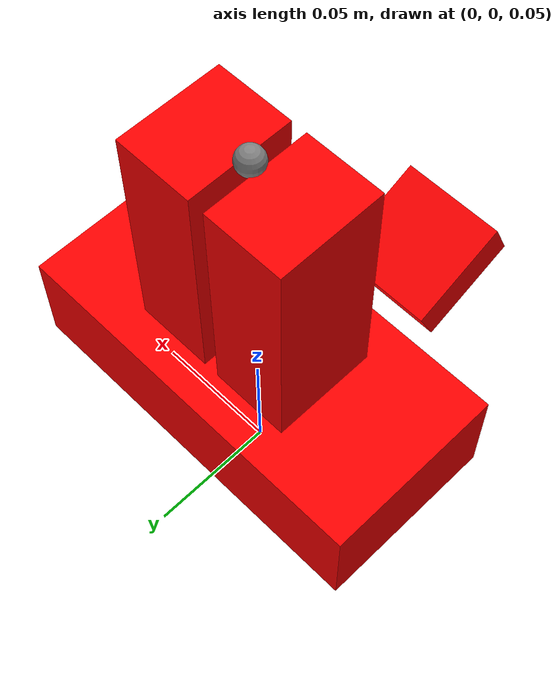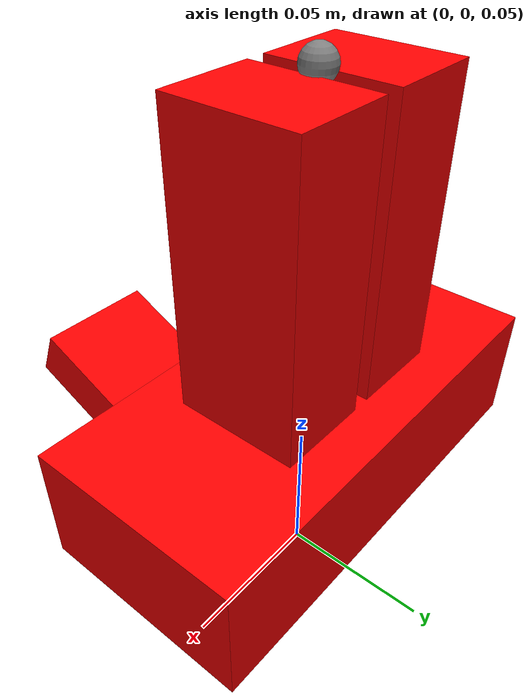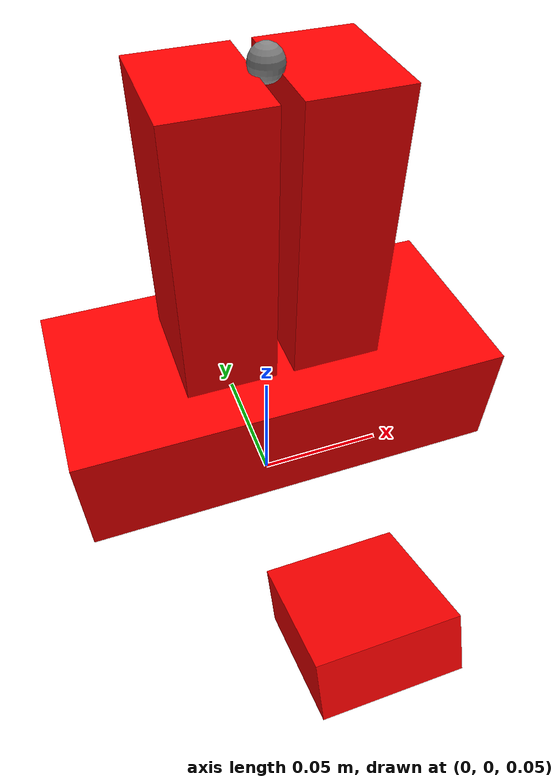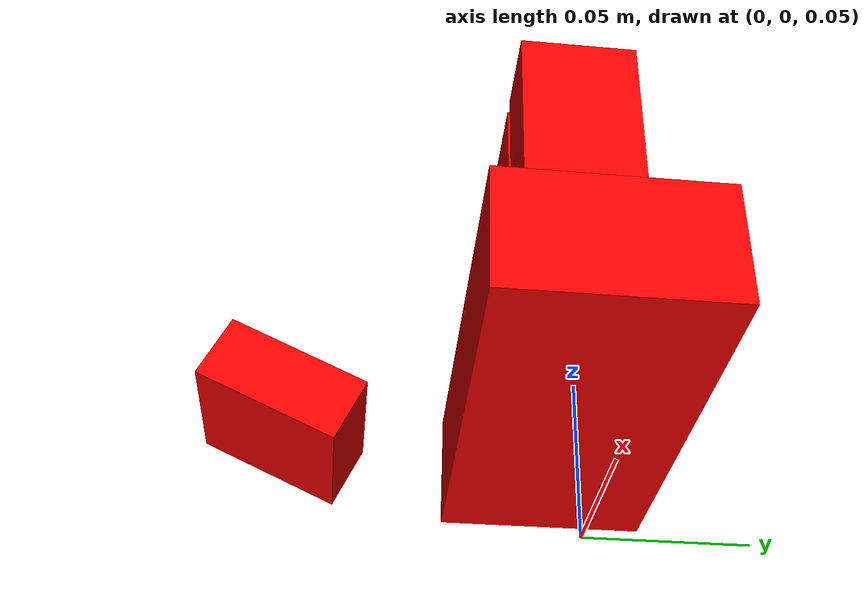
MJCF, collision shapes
<mujoco model="aloha_gripper_with_joint_dynamics">
    <include file="aloha_gripper.xml" />

    <custom>
        <numeric name="wrist_rotate\joint\damping\0\range\y" size='2' data='0.0 20.0' />
        <numeric name="wrist_rotate\joint\armature\0\range\y" size='2' data='0.0 0.5' />
        <numeric name="wrist_rotate\joint\frictionloss\0\range\y" size='2' data='0.0 2.0' />
    </custom>
</mujoco>

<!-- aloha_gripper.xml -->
<mujoco model="aloha_gripper">
    <compiler angle="radian" meshdir="assets" autolimits="true" />

    <asset>
        <mesh file="vx300s_7_gripper_prop.stl" />
        <mesh file="vx300s_7_gripper_bar.stl" />
        <mesh file="vx300s_7_gripper_wrist_mount.stl" />
        <mesh file="vx300s_8_custom_finger_left.stl" />
        <mesh file="vx300s_8_custom_finger_right.stl" />
        <mesh file="d405_solid.stl" />
    </asset>

    <default>
        <default class="vx300s">
            <joint axis="0 1 0" actuatorfrcrange="-35 35" actuatorgravcomp="true" />
            <site group="4" />
            <default class="wrist_rotate">
                <joint axis="0 0 1" range="-3.14158 3.14158" damping="1.2"
                    actuatorfrcrange="-35 35" />
                <position ctrlrange="-3.14158 3.14158" kp="10.4" forcerange="-35 35" />
            </default>
            <default class="finger">
                <joint type="slide" armature="0.243" damping="40"
                    actuatorfrcrange="-35 35" />
                <position ctrlrange="0.002 0.037" kp="2000" kv="124" forcerange="-35 35" />
                <default class="left_finger">
                    <joint range="0 0.041" axis="0 0 -1" />
                </default>
                <default class="right_finger">
                    <joint range="0 0.041" axis="0 0 -1" />
                </default>
            </default>
            <default class="visual">
                <geom type="mesh" mass="0" group="2" contype="0" conaffinity="0" />
            </default>
            <default class="collision">
                <geom group="3" type="mesh" condim="6" friction="1 5e-3 5e-4" solref=".01 1" />
            </default>
        </default>
    </default>

    <worldbody>
        <body name="gripper_link" childclass="vx300s" pos="0 0 0.104744">
            <joint name="wrist_rotate" class="wrist_rotate" axis="0 0 1" pos="0 0 -0.04" />
            <geom type="box" size="0.073 0.035 0.02"
                pos="0 0 0"
                rgba="1 0 0 1"
                class="collision" mass="0.22158" />
            <geom type="box" size="0.022 0.022 0.01"
                pos="0.0 -0.088 -0.02"
                euler="-0.43 0 0"
                rgba="1 0 0 1"
                mass="0.2"
                class="collision" />
            <geom class="visual" mesh="vx300s_7_gripper_prop" />
            <geom class="visual" mesh="vx300s_7_gripper_bar" />
            <geom class="visual" pos="0 -0.03525 -0.0227"
                quat="0 -1 0 -1" type="mesh"
                mesh="vx300s_7_gripper_wrist_mount" />
            <geom class="visual" pos="0 -0.0824748 -0.0095955"
                quat="0 0 -0.21644 -0.976296"
                type="mesh" mesh="d405_solid" />
            <!-- group 1 means a tracking site -->
            <site name="end_effector_target" pos="0 0 0.113"
                group="1" />
            <camera name="wrist_cam_left" pos="0 -0.0824748 -0.0095955"
                mode="fixed"
                euler="2.70525955359 0 0"
                focal="1.93e-3 1.93e-3" resolution="1280 720"
                sensorsize="3896e-6 2140e-6" />
            <body name="left_finger_link"
                pos="0.028 -0.0141637 0.0211727"
                quat="1 -1 -1 1">
                <inertial pos="0.0143478 -0.0284791 0.0122897"
                    quat="0.535486 0.458766 -0.450407 0.547651"
                    mass="0.0862937"
                    diaginertia="5.86848e-05 4.46887e-05 1.8397e-05" />
                <geom pos="0.0141637 0.0211727 0.06" class="visual"
                    quat="1 1 1 -1"
                    type="mesh"
                    mesh="vx300s_8_custom_finger_left" />
                <geom type="box" size="0.02 0.045 0.015"
                    pos="0.015 -0.045 0.01"
                    euler="0 0 0"
                    rgba="1 0 0 1"
                    mass="0.0862937" class="collision" />
            </body>
            <body name="right_finger_link"
                pos="-0.028 -0.0141637 0.0211727"
                quat="1 1 1 1">
                <inertial pos="0.0143711 0.0284792 0.0121421"
                    quat="0.461317 0.537615 -0.545478 0.447894"
                    mass="0.0862932"
                    diaginertia="5.86828e-05 4.46887e-05 1.83949e-05" />
                <geom pos="0.0141637 -0.0211727 0.0597067"
                    class="visual" quat="1 -1 -1 -1"
                    type="mesh"
                    mesh="vx300s_8_custom_finger_right" />
                <geom type="box" size="0.02 0.045 0.015"
                    pos="0.015 0.045 0.01"
                    euler="0 0 0"
                    rgba="1 0 0 1"
                    mass="0.0862932" class="collision" />
            </body>
        </body>
    </worldbody>

    <custom>
        <tuple name="actuators">
            <element objtype="joint" objname="wrist_rotate" />
        </tuple>

        <!-- choice between 3 axes -->
    </custom>

</mujoco>
